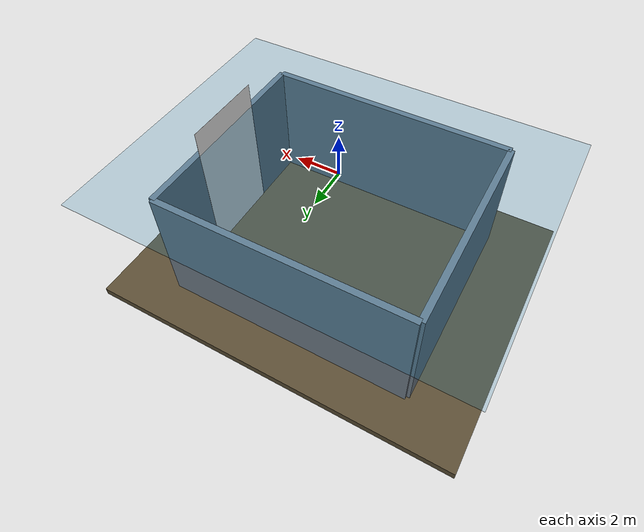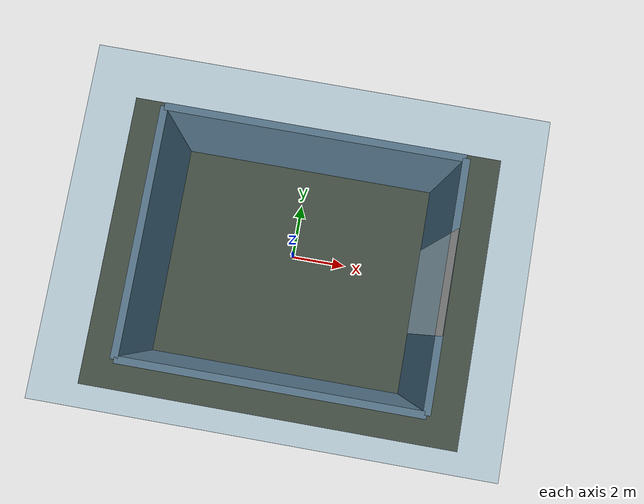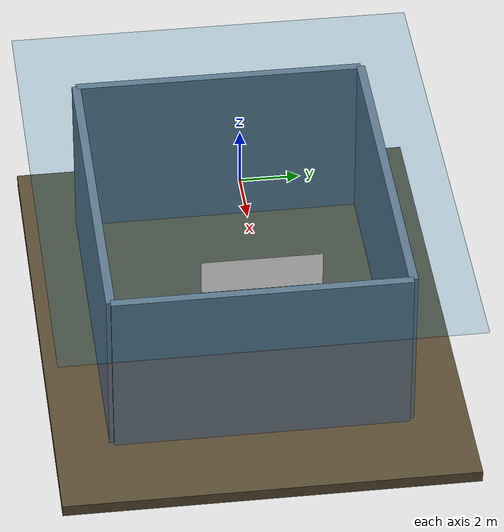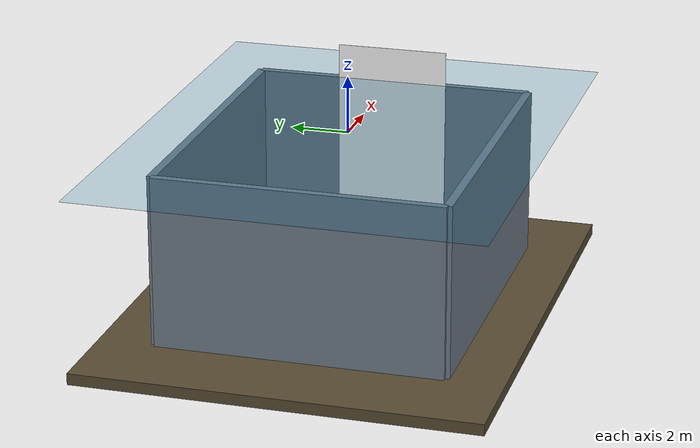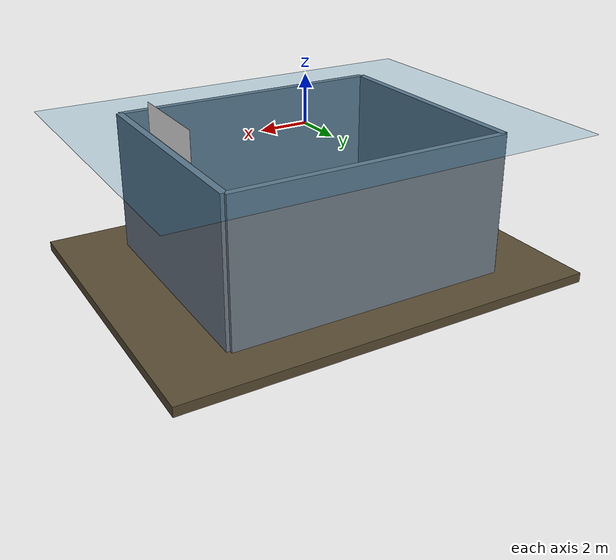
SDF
<?xml version='1.0' encoding='utf-8'?>
<sdf version="1.7">
  <world name="marine_tank">
    <physics name="marine_physics" type="ode">
      <max_step_size>0.001</max_step_size>
      <real_time_factor>1</real_time_factor>
    </physics>
    <gravity>0 0 -9.81</gravity>
    <plugin filename="ignition-gazebo-physics-system" name="ignition::gazebo::systems::Physics" />
    <plugin filename="ignition-gazebo-user-commands-system" name="ignition::gazebo::systems::UserCommands" />
    <plugin filename="ignition-gazebo-scene-broadcaster-system" name="ignition::gazebo::systems::SceneBroadcaster" />
    <plugin filename="ignition-gazebo-sensors-system" name="ignition::gazebo::systems::Sensors">
      <render_engine>ogre2</render_engine>
    </plugin>
    <plugin filename="ignition-gazebo-imu-system" name="ignition::gazebo::systems::Imu" />
    <plugin filename="ignition-gazebo-buoyancy-system" name="ignition::gazebo::systems::Buoyancy">
      <graded_buoyancy>
        <default_density>1025</default_density>
        <density_change>
          <above_depth>0</above_depth>
          <density>1.225</density>
        </density_change>
      </graded_buoyancy>
      <enable>lab_rov</enable>
    </plugin>
    <scene>
      <ambient>.3 .55 .6 1</ambient>
      <background>.05 .18 .25 1</background>
    </scene>
    <light name="sun" type="directional">
      <pose>0 0 10 0 0 0</pose>
      <diffuse>.8 .9 1 1</diffuse>
      <direction>-.3 .2 -1</direction>
    </light>
    <model name="seafloor">
      <static>true</static>
      <pose>0 0 -6.2 0 0 0</pose>
      <link name="link">
        <visual name="visual">
          <geometry>
            <box>
              <size>18 14 0.4</size>
            </box>
          </geometry>
          <material>
            <ambient>.35 .3 .2 1</ambient>
            <diffuse>.35 .3 .2 1</diffuse>
          </material>
        </visual>
        <collision name="collision">
          <geometry>
            <box>
              <size>18 14 0.4</size>
            </box>
          </geometry>
        </collision>
      </link>
    </model>
    <model name="water_surface">
      <static>true</static>
      <pose>0 0 0 0 0 0</pose>
      <link name="link">
        <visual name="visual">
          <geometry>
            <box>
              <size>18 14 0.015</size>
            </box>
          </geometry>
          <material>
            <ambient>0 .4 .6 .18</ambient>
            <diffuse>0 .4 .6 .18</diffuse>
          </material>
        </visual>
      </link>
    </model>
    <model name="tank_wall_0">
      <static>true</static>
      <pose>6 0 -3 0 0 0</pose>
      <link name="link">
        <visual name="visual">
          <geometry>
            <box>
              <size>0.3 10 6</size>
            </box>
          </geometry>
          <material>
            <ambient>.45 .5 .55 1</ambient>
            <diffuse>.45 .5 .55 1</diffuse>
          </material>
        </visual>
        <collision name="collision">
          <geometry>
            <box>
              <size>0.3 10 6</size>
            </box>
          </geometry>
        </collision>
      </link>
    </model>
    <model name="tank_wall_1">
      <static>true</static>
      <pose>-6 0 -3 0 0 0</pose>
      <link name="link">
        <visual name="visual">
          <geometry>
            <box>
              <size>0.3 10 6</size>
            </box>
          </geometry>
          <material>
            <ambient>.45 .5 .55 1</ambient>
            <diffuse>.45 .5 .55 1</diffuse>
          </material>
        </visual>
        <collision name="collision">
          <geometry>
            <box>
              <size>0.3 10 6</size>
            </box>
          </geometry>
        </collision>
      </link>
    </model>
    <model name="tank_wall_2">
      <static>true</static>
      <pose>0 5 -3 0 0 0</pose>
      <link name="link">
        <visual name="visual">
          <geometry>
            <box>
              <size>12 0.3 6</size>
            </box>
          </geometry>
          <material>
            <ambient>.45 .5 .55 1</ambient>
            <diffuse>.45 .5 .55 1</diffuse>
          </material>
        </visual>
        <collision name="collision">
          <geometry>
            <box>
              <size>12 0.3 6</size>
            </box>
          </geometry>
        </collision>
      </link>
    </model>
    <model name="tank_wall_3">
      <static>true</static>
      <pose>0 -5 -3 0 0 0</pose>
      <link name="link">
        <visual name="visual">
          <geometry>
            <box>
              <size>12 0.3 6</size>
            </box>
          </geometry>
          <material>
            <ambient>.45 .5 .55 1</ambient>
            <diffuse>.45 .5 .55 1</diffuse>
          </material>
        </visual>
        <collision name="collision">
          <geometry>
            <box>
              <size>12 0.3 6</size>
            </box>
          </geometry>
        </collision>
      </link>
    </model>
    <model name="visual_reference_board">
      <static>true</static>
      <pose>5.84 0 -2.75 0 0 0</pose>
      <link name="board">
        <visual name="reference">
          <geometry>
            <plane>
              <normal>-1 0 0</normal>
              <size>8 4</size>
            </plane>
          </geometry>
          <material>
            <ambient>.8 .8 .8 1</ambient>
            <diffuse>1 1 1 1</diffuse>
            <pbr>
              <metal>
                <albedo_map>../materials/textures/tank_reference.png</albedo_map>
                <metalness>0</metalness>
                <roughness>1</roughness>
              </metal>
            </pbr>
          </material>
        </visual>
      </link>
    </model>
  </world>
</sdf>
